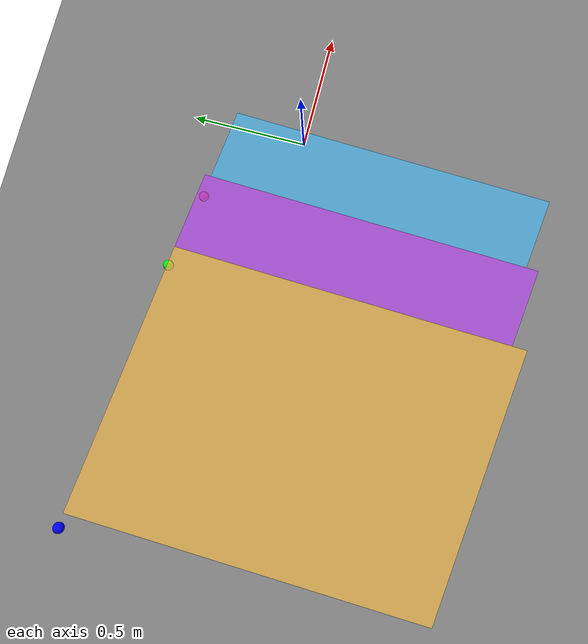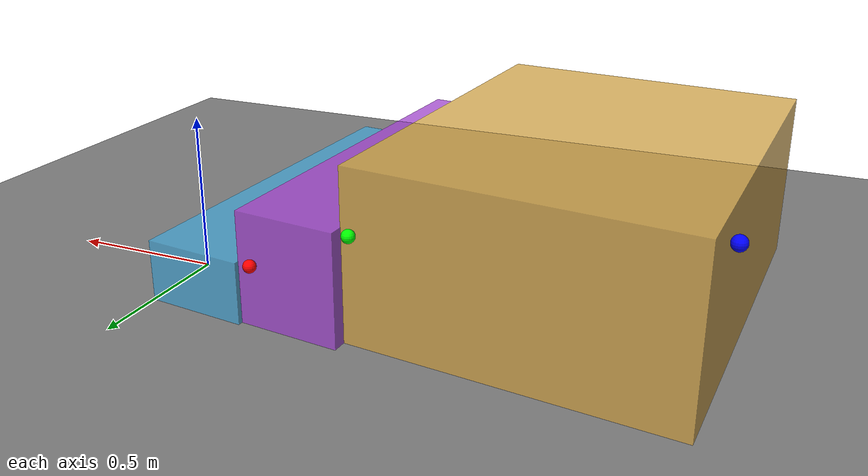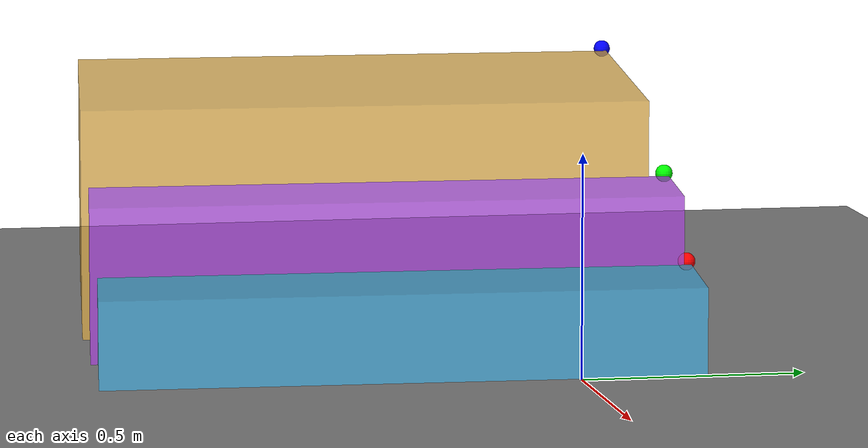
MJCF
<mujoco model="stair_environment">
  <compiler angle="radian"/>

  <asset>
    <material name="ground_material" rgba="0.5 0.5 0.5 1"/>

    <mesh name="stair_step1" file="box_models/box1.obj"/>
    <mesh name="stair_step2" file="box_models/box2.obj"/>
    <mesh name="stair_step3" file="box_models/box3.obj"/>

    <material name="stair_step1_material" rgba="0.3 0.7 0.9 0.8"/>
    <material name="stair_step2_material" rgba="0.7 0.3 0.9 0.8"/>
    <material name="stair_step3_material" rgba="0.9 0.7 0.3 0.8"/>
  </asset>

  <worldbody>
    <geom name="ground" type="plane" size="10 10 0.1" pos="0 0 0" material="ground_material"/>

    <body name="stair_step1_body" pos="0 0 0" quat="1 0 0 0">
      <geom name="stair_step1_geom" type="mesh" mesh="stair_step1" pos="0 0 0" quat="1 0 0 0" material="stair_step1_material" contype="1" conaffinity="1"/>
    </body>
    <site name="stair_marker_1" type="sphere" size="0.02" pos="-0.381030 0.321873 0.195582" rgba="1 0 0 1"/>

    <body name="stair_step2_body" pos="0 0 0" quat="1 0 0 0">
      <geom name="stair_step2_geom" type="mesh" mesh="stair_step2" pos="0 0 0" quat="1 0 0 0" material="stair_step2_material" contype="1" conaffinity="1"/>
    </body>
    <site name="stair_marker_2" type="sphere" size="0.02" pos="-0.711776 0.343746 0.351164" rgba="0 1 0 1"/>

    <body name="stair_step3_body" pos="0 0 0" quat="1 0 0 0">
      <geom name="stair_step3_geom" type="mesh" mesh="stair_step3" pos="0 0 0" quat="1 0 0 0" material="stair_step3_material" contype="1" conaffinity="1"/>
    </body>
    <site name="stair_marker_3" type="sphere" size="0.02" pos="-1.704015 0.409366 0.526747" rgba="0 0 1 1"/>

  </worldbody>

</mujoco>
